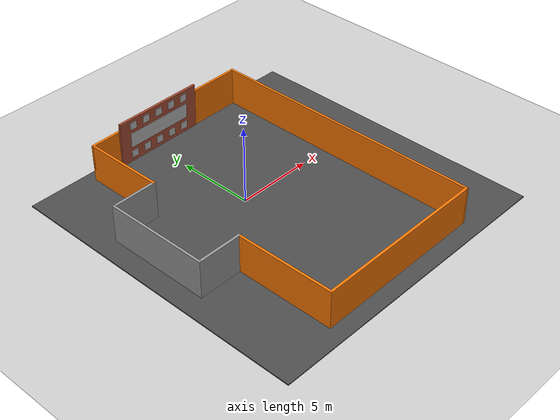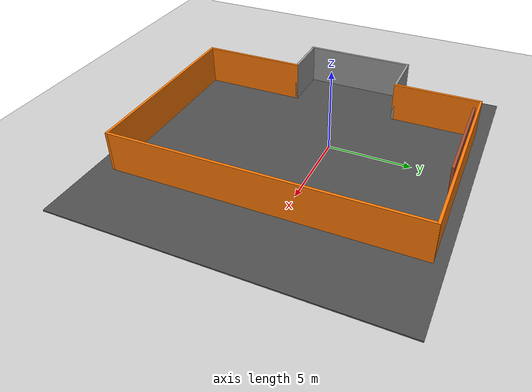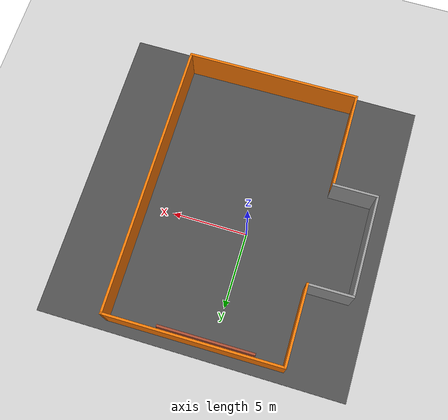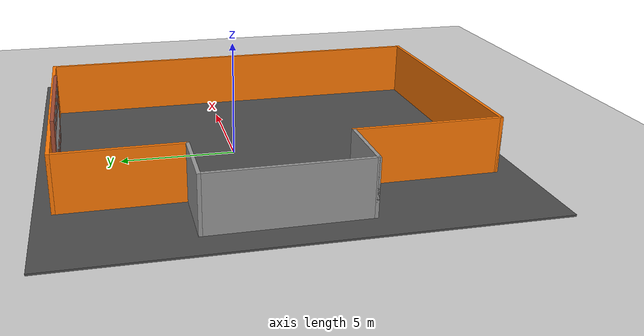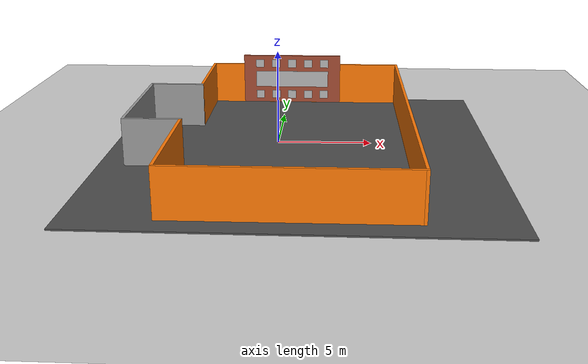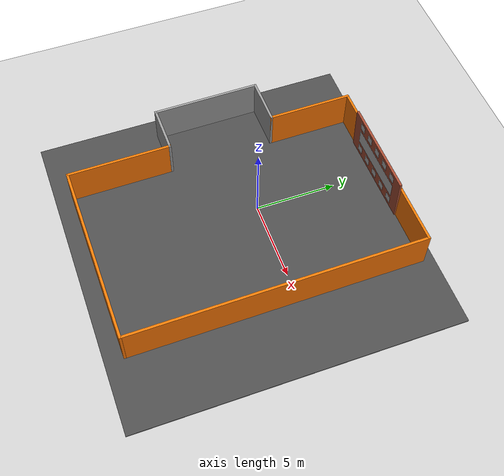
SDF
<sdf version="1.6">
 <world name="default">
  <light name="sun" type="directional">
   <pose>0 0 10 0 -0 0</pose>
   <diffuse>0.8 0.8 0.8 1</diffuse>
   <specular>0.2 0.2 0.2 1</specular>
   <attenuation>
    <range>1000</range>
    <constant>0.9</constant>
    <linear>0.01</linear>
    <quadratic>0.001</quadratic>
   </attenuation>
   <direction>-0.5 0.1 -0.9</direction>
  </light>
  <model name="ground_plane">
   <static>1</static>
   <link name="link">
    <collision name="collision">
     <geometry><plane><normal>0 0 1</normal><size>100 100</size></plane></geometry>
     <surface>
      <contact><collide_bitmask>65535</collide_bitmask></contact>
      <friction><ode><mu>100</mu><mu2>50</mu2></ode></friction>
     </surface>
    </collision>
    <visual name="visual">
     <cast_shadows>0</cast_shadows>
     <geometry><plane><normal>0 0 1</normal><size>100 100</size></plane></geometry>
     <material>
      <script><uri>file://media/materials/scripts/gazebo.material</uri><name>Gazebo/Grey</name></script>
     </material>
    </visual>
   </link>
  </model>
  <gravity>0 0 -9.8</gravity>
  <magnetic_field>6e-06 2.3e-05 -4.2e-05</magnetic_field>
  <atmosphere type="adiabatic"/>
  <physics name="default_physics" default="0" type="ode">
   <max_step_size>0.001</max_step_size>
   <real_time_factor>1</real_time_factor>
   <real_time_update_rate>1000</real_time_update_rate>
  </physics>
  <scene><ambient>0.4 0.4 0.4 1</ambient><background>0.7 0.7 0.7 1</background><shadows>1</shadows></scene>
  <spherical_coordinates>
   <surface_model>EARTH_WGS84</surface_model>
   <latitude_deg>0</latitude_deg>
   <longitude_deg>0</longitude_deg>
   <elevation>0</elevation>
   <heading_deg>0</heading_deg>
  </spherical_coordinates>
  <model name="room">
   <pose>-0.256995 -1.30073 0 0 0 -1.56463</pose>
   <link name="Wall_0">
    <collision name="Wall_0_Collision">
     <geometry><box><size>3 0.15 2.5</size></box></geometry>
     <pose>0 0 1.25 0 -0 0</pose>
    </collision>
    <visual name="Wall_0_Visual">
     <pose>0 0 1.25 0 -0 0</pose>
     <geometry><box><size>3 0.15 2.5</size></box></geometry>
     <material>
      <script><uri>file://media/materials/scripts/gazebo.material</uri><name>Gazebo/Grey</name></script>
      <ambient>1 1 1 1</ambient>
     </material>
     <meta><layer>0</layer></meta>
    </visual>
    <pose>-3.9 -5.675 0 0 -0 -1.5708</pose>
   </link>
   <link name="Wall_1">
    <collision name="Wall_1_Collision">
     <geometry><box><size>6.75 0.15 2.5</size></box></geometry>
     <pose>0 0 1.25 0 -0 0</pose>
    </collision>
    <visual name="Wall_1_Visual">
     <pose>0 0 1.25 0 -0 0</pose>
     <geometry><box><size>6.75 0.15 2.5</size></box></geometry>
     <material>
      <script><uri>file://media/materials/scripts/gazebo.material</uri><name>Gazebo/Grey</name></script>
      <ambient>1 1 1 1</ambient>
     </material>
     <meta><layer>0</layer></meta>
    </visual>
    <pose>-0.6 -7.1 0 0 -0 0</pose>
   </link>
   <link name="Wall_2">
    <collision name="Wall_2_Collision">
     <geometry><box><size>3 0.15 2.5</size></box></geometry>
     <pose>0 0 1.25 0 -0 0</pose>
    </collision>
    <visual name="Wall_2_Visual">
     <pose>0 0 1.25 0 -0 0</pose>
     <geometry><box><size>3 0.15 2.5</size></box></geometry>
     <material>
      <script><uri>file://media/materials/scripts/gazebo.material</uri><name>Gazebo/Grey</name></script>
      <ambient>1 1 1 1</ambient>
     </material>
     <meta><layer>0</layer></meta>
    </visual>
    <pose>2.7 -5.675 0 0 -0 1.5708</pose>
   </link>
   <link name="Wall_3">
    <collision name="Wall_3_Collision">
     <geometry><box><size>6.5 0.15 2.5</size></box></geometry>
     <pose>0 0 1.25 0 -0 0</pose>
    </collision>
    <visual name="Wall_3_Visual">
     <pose>0 0 1.25 0 -0 0</pose>
     <geometry><box><size>6.5 0.15 2.5</size></box></geometry>
     <material>
      <script><uri>file://media/materials/scripts/gazebo.material</uri><name>Gazebo/Grey</name></script>
      <ambient>0.996078 0.47451 0.0196078 1</ambient>
     </material>
     <meta><layer>0</layer></meta>
    </visual>
    <pose>5.875 -4.25 0 0 -0 0</pose>
   </link>
   <link name="Wall_5">
    <collision name="Wall_5_Collision">
     <geometry><box><size>11.5 0.15 2.5</size></box></geometry>
     <pose>0 0 1.25 0 -0 0</pose>
    </collision>
    <visual name="Wall_5_Visual">
     <pose>0 0 1.25 0 -0 0</pose>
     <geometry><box><size>11.5 0.15 2.5</size></box></geometry>
     <material>
      <script><uri>file://media/materials/scripts/gazebo.material</uri><name>Gazebo/Grey</name></script>
      <ambient>0.996078 0.47451 0.0196078 1</ambient>
     </material>
     <meta><layer>0</layer></meta>
    </visual>
    <pose>9.05 1.425 0 0 -0 1.5708</pose>
   </link>
   <link name="Wall_6">
    <collision name="Wall_6_Collision">
     <geometry><box><size>18.25 0.15 2.5</size></box></geometry>
     <pose>0 0 1.25 0 -0 0</pose>
    </collision>
    <visual name="Wall_6_Visual">
     <pose>0 0 1.25 0 -0 0</pose>
     <geometry><box><size>18.25 0.15 2.5</size></box></geometry>
     <material>
      <script><uri>file://media/materials/scripts/gazebo.material</uri><name>Gazebo/Grey</name></script>
      <ambient>0.996078 0.47451 0.0196078 1</ambient>
     </material>
     <meta><layer>0</layer></meta>
    </visual>
    <pose>0 7.1 0 0 -0 3.14159</pose>
   </link>
   <link name="Wall_7">
    <collision name="Wall_7_Collision">
     <geometry><box><size>11.5 0.15 2.5</size></box></geometry>
     <pose>0 0 1.25 0 -0 0</pose>
    </collision>
    <visual name="Wall_7_Visual">
     <pose>0 0 1.25 0 -0 0</pose>
     <geometry><box><size>11.5 0.15 2.5</size></box></geometry>
     <material>
      <script><uri>file://media/materials/scripts/gazebo.material</uri><name>Gazebo/Grey</name></script>
      <ambient>0.996078 0.47451 0.0196078 1</ambient>
     </material>
     <meta><layer>0</layer></meta>
    </visual>
    <pose>-9.05 1.425 0 0 -0 -1.5708</pose>
   </link>
   <link name="Wall_8">
    <collision name="Wall_8_Collision">
     <geometry><box><size>5.3 0.15 2.5</size></box></geometry>
     <pose>0 0 1.25 0 -0 0</pose>
    </collision>
    <visual name="Wall_8_Visual">
     <pose>0 0 1.25 0 -0 0</pose>
     <geometry><box><size>5.3 0.15 2.5</size></box></geometry>
     <material>
      <script><uri>file://media/materials/scripts/gazebo.material</uri><name>Gazebo/Grey</name></script>
      <ambient>0.996078 0.47451 0.0196078 1</ambient>
     </material>
     <meta><layer>0</layer></meta>
    </visual>
    <pose>-6.475 -4.25 0 0 -0 0</pose>
   </link>
   <static>1</static>
  </model>
  <model name="wall_with_num">
   <pose>0.301724 7.62144 1.58055 -0.028957 -0.000253 -3.13441</pose>
   <static>1</static>
   <link name="wall_link">
    <inertial><mass>1</mass></inertial>
    <collision name="my_collision"><geometry><box><size>6 0.15 3</size></box></geometry></collision>
    <visual name="my_visual">
     <geometry><box><size>6 0.15 3</size></box></geometry>
     <material>
      <script><uri>file://media/materials/scripts/gazebo.material</uri><name>Gazebo/Bricks</name></script>
      <ambient>1 1 1 1</ambient>
     </material>
    </visual>
   </link>
   <link name="logo">
    <pose>-0 0.07 -0 0 -0 0</pose>
    <collision name="collision"><geometry><box><size>0.5 0.01 0.5</size></box></geometry></collision>
    <visual name="visual">
     <cast_shadows>0</cast_shadows>
     <geometry><box><size>4.5 0.03 1</size></box></geometry>
     <material>
      <script>
       <uri>model://logo_ground/materials/scripts</uri>
       <uri>model://logo_ground/materials/textures</uri>
       <name>Cube/logo_ground</name>
      </script>
     </material>
    </visual>
   </link>
   <link name="num_0">
    <pose>2 0.07 1 0 -0 0</pose>
    <collision name="collision"><geometry><box><size>0.5 0.01 0.5</size></box></geometry></collision>
    <visual name="visual">
     <cast_shadows>0</cast_shadows>
     <geometry><box><size>0.5 0.03 0.5</size></box></geometry>
     <material>
      <script>
       <uri>model://wall_with_num/materials/scripts/numbers.material</uri>
       <uri>model://wall_with_num/materials/textures/</uri>
       <name>Numbers/0</name>
      </script>
     </material>
    </visual>
   </link>
   <link name="num_1">
    <pose>1 0.07 1 0 -0 0</pose>
    <collision name="collision"><geometry><box><size>0.5 0.01 0.5</size></box></geometry></collision>
    <visual name="visual">
     <cast_shadows>0</cast_shadows>
     <geometry><box><size>0.5 0.03 0.5</size></box></geometry>
     <material>
      <script>
       <uri>model://wall_with_num/materials/scripts/numbers.material</uri>
       <uri>model://wall_with_num/materials/textures/</uri>
       <name>Numbers/1</name>
      </script>
     </material>
    </visual>
   </link>
   <link name="num_2">
    <pose>0 0.07 1 0 -0 0</pose>
    <collision name="collision"><geometry><box><size>0.5 0.01 0.5</size></box></geometry></collision>
    <visual name="visual">
     <cast_shadows>0</cast_shadows>
     <geometry><box><size>0.5 0.03 0.5</size></box></geometry>
     <material>
      <script>
       <uri>model://wall_with_num/materials/scripts/numbers.material</uri>
       <uri>model://wall_with_num/materials/textures/</uri>
       <name>Numbers/2</name>
      </script>
     </material>
    </visual>
   </link>
   <link name="num_3">
    <pose>-1 0.07 1 0 -0 0</pose>
    <collision name="collision"><geometry><box><size>0.5 0.01 0.5</size></box></geometry></collision>
    <visual name="visual">
     <cast_shadows>0</cast_shadows>
     <geometry><box><size>0.5 0.03 0.5</size></box></geometry>
     <material>
      <script>
       <uri>model://wall_with_num/materials/scripts/numbers.material</uri>
       <uri>model://wall_with_num/materials/textures/</uri>
       <name>Numbers/3</name>
      </script>
     </material>
    </visual>
   </link>
   <link name="num_4">
    <pose>-2 0.07 1 0 -0 0</pose>
    <collision name="collision"><geometry><box><size>0.5 0.01 0.5</size></box></geometry></collision>
    <visual name="visual">
     <cast_shadows>0</cast_shadows>
     <geometry><box><size>0.5 0.03 0.5</size></box></geometry>
     <material>
      <script>
       <uri>model://wall_with_num/materials/scripts/numbers.material</uri>
       <uri>model://wall_with_num/materials/textures/</uri>
       <name>Numbers/4</name>
      </script>
     </material>
    </visual>
   </link>
   <link name="num_5">
    <pose>2 0.07 -1 0 -0 0</pose>
    <collision name="collision"><geometry><box><size>0.5 0.01 0.5</size></box></geometry></collision>
    <visual name="visual">
     <cast_shadows>0</cast_shadows>
     <geometry><box><size>0.5 0.03 0.5</size></box></geometry>
     <material>
      <script>
       <uri>model://wall_with_num/materials/scripts/numbers.material</uri>
       <uri>model://wall_with_num/materials/textures/</uri>
       <name>Numbers/5</name>
      </script>
     </material>
    </visual>
   </link>
   <link name="num_6">
    <pose>1 0.07 -1 0 -0 0</pose>
    <collision name="collision"><geometry><box><size>0.5 0.01 0.5</size></box></geometry></collision>
    <visual name="visual">
     <cast_shadows>0</cast_shadows>
     <geometry><box><size>0.5 0.03 0.5</size></box></geometry>
     <material>
      <script>
       <uri>model://wall_with_num/materials/scripts/numbers.material</uri>
       <uri>model://wall_with_num/materials/textures/</uri>
       <name>Numbers/6</name>
      </script>
     </material>
    </visual>
   </link>
   <link name="num_7">
    <pose>0 0.07 -1 0 -0 0</pose>
    <collision name="collision"><geometry><box><size>0.5 0.01 0.5</size></box></geometry></collision>
    <visual name="visual">
     <cast_shadows>0</cast_shadows>
     <geometry><box><size>0.5 0.03 0.5</size></box></geometry>
     <material>
      <script>
       <uri>model://wall_with_num/materials/scripts/numbers.material</uri>
       <uri>model://wall_with_num/materials/textures/</uri>
       <name>Numbers/7</name>
      </script>
     </material>
    </visual>
   </link>
   <link name="num_8">
    <pose>-1 0.07 -1 0 -0 0</pose>
    <collision name="collision"><geometry><box><size>0.5 0.01 0.5</size></box></geometry></collision>
    <visual name="visual">
     <cast_shadows>0</cast_shadows>
     <geometry><box><size>0.5 0.03 0.5</size></box></geometry>
     <material>
      <script>
       <uri>model://wall_with_num/materials/scripts/numbers.material</uri>
       <uri>model://wall_with_num/materials/textures/</uri>
       <name>Numbers/8</name>
      </script>
     </material>
    </visual>
   </link>
   <link name="num_9">
    <pose>-2 0.07 -1 0 -0 0</pose>
    <collision name="collision"><geometry><box><size>0.5 0.01 0.5</size></box></geometry></collision>
    <visual name="visual">
     <cast_shadows>0</cast_shadows>
     <geometry><box><size>0.5 0.03 0.5</size></box></geometry>
     <material>
      <script>
       <uri>model://wall_with_num/materials/scripts/numbers.material</uri>
       <uri>model://wall_with_num/materials/textures/</uri>
       <name>Numbers/9</name>
      </script>
     </material>
    </visual>
   </link>
  </model>
  <model name="asphalt_plane">
   <static>1</static>
   <link name="link">
    <collision name="collision"><geometry><box><size>20 20 0.1</size></box></geometry></collision>
    <visual name="visual">
     <cast_shadows>0</cast_shadows>
     <geometry><box><size>20 20 0.1</size></box></geometry>
     <material>
      <script>
       <uri>model://asphalt_plane/materials/scripts</uri>
       <uri>model://asphalt_plane/materials/textures</uri>
       <name>vrc/asphalt</name>
      </script>
     </material>
    </visual>
   </link>
   <pose>1.26832 -1.48839 0 0 -0 0</pose>
  </model>
  <model name="stone_10_2_5_1cm">
   <link name="link">
    <pose>0 0 0.005 0 -0 0</pose>
    <inertial>
     <mass>0.0628</mass>
     <inertia>
      <ixx>3.79417e-06</ixx>
      <ixy>0</ixy>
      <ixz>0</ixz>
      <iyy>5.28567e-05</iyy>
      <iyz>0</iyz>
      <izz>5.56042e-05</izz>
     </inertia>
    </inertial>
    <collision name="collision">
     <geometry><box><size>0.1 0.025 0.01</size></box></geometry>
     <surface>
      <contact>
       <poissons_ratio>0.15</poissons_ratio>
       <elastic_modulus>8e+10</elastic_modulus>
       <ode><kp>100000</kp><kd>100</kd><max_vel>100</max_vel><min_depth>0.001</min_depth></ode>
      </contact>
      <friction>
       <torsional>
        <coefficient>1</coefficient>
        <use_patch_radius>0</use_patch_radius>
        <surface_radius>0.01</surface_radius>
       </torsional>
      </friction>
     </surface>
    </collision>
    <visual name="visual">
     <geometry><box><size>0.1 0.025 0.01</size></box></geometry>
     <material>
      <script><uri>file://media/materials/scripts/gazebo.material</uri><name>Gazebo/Grey</name></script>
     </material>
    </visual>
   </link>
  </model>
  <plugin name="ros_interface_plugin" filename="librotors_gazebo_ros_interface_plugin.so"/>
 </world>
</sdf>
